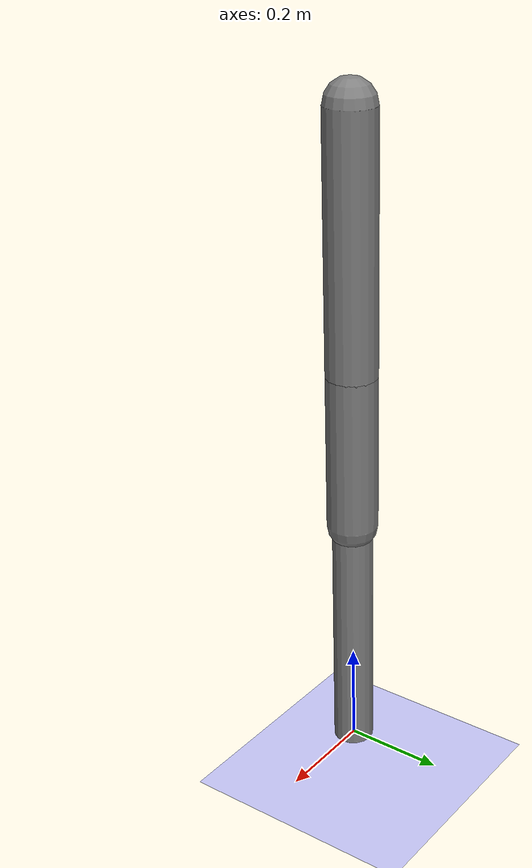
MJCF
<?xml version='1.0' encoding='UTF-8'?>
<mujoco model="robot_model">
  <worldbody>
    <light name="light" pos="0 -3 10" dir="0 0.5 -1" diffuse=".8 .8 .8" specular="0.1 0.1 0.1"/>
    <geom name="floor" type="plane" size="10.0 10.0 0.1" pos="0 0 0" rgba="0.8 0.8 1 1" contype="2" conaffinity="1"/>
    <body name="limb0" pos="0 0 0">
      <geom type="capsule" fromto="0 0 0 0 0 0.5970508653545454" size="0.04" density="859.9369589397895" contype="1" conaffinity="2"/>
      <site type="sphere" size="0.01" name="limb0_site0" pos="0 0 0.4410641018786898"/>
      <freejoint name="limb0_root"/>
      <body name="limb1" pos="0 0 0.4410641018786898">
        <geom type="capsule" fromto="0 0 0 0 0 0.15022447893611943" size="0.02942549387292471" density="623.2072277617059" contype="1" conaffinity="2"/>
        <site type="sphere" size="0.01" name="limb1_site0" pos="0 0 0.05751164040362171"/>
        <site type="sphere" size="0.01" name="limb1_site1" pos="0 0 0.058240055480809516"/>
        <body name="limb2" pos="0 0 0.05751164040362171">
          <geom type="capsule" fromto="0 0 0 0 0 0.3142270466105088" size="0.05027037047097052" density="884.6335299250863" contype="1" conaffinity="2"/>
          <site type="sphere" size="0.01" name="limb2_site0" pos="0 0 0.31407035800293537"/>
          <site type="sphere" size="0.01" name="limb2_site1" pos="0 0 0.1244647876466998"/>
          <site type="sphere" size="0.01" name="limb2_site2" pos="0 0 0.04165795227886009"/>
          <body name="limb3" pos="0 0 0.31407035800293537">
            <geom type="capsule" fromto="0 0 0 0 0 0.5" size="0.05036186858249093" density="994.4770382629451" contype="1" conaffinity="2"/>
            <joint name="joint_limb2_limb3_0" type="hinge" axis="0 1 0" range="-102.12620363364933 102.12620363364933" damping="5.0"/>
          </body>
          <body name="limb4" pos="0 0 0.1244647876466998">
            <geom type="capsule" fromto="0 0 0 0 0 0.36676537835349476" size="0.037605996818648096" density="900.064348310711" contype="1" conaffinity="2"/>
            <joint name="joint_limb2_limb4_0" type="hinge" axis="0 1 0" range="-118.99053825008444 118.99053825008444" damping="5.0"/>
          </body>
          <body name="limb5" pos="0 0 0.04165795227886009">
            <geom type="capsule" fromto="0 0 0 0 0 0.3159768240312215" size="0.04398226962321314" density="874.9200254675034" contype="1" conaffinity="2"/>
            <joint name="joint_limb2_limb5_0" type="hinge" axis="0 0 1" range="-118.11198317294439 118.11198317294439" damping="5.0"/>
          </body>
          <joint name="joint_limb1_limb2_0" type="hinge" axis="0 1 0" range="-81.36051586401729 81.36051586401729" damping="5.0"/>
        </body>
        <body name="limb6" pos="0 0 0.058240055480809516">
          <geom type="capsule" fromto="0 0 0 0 0 0.36608095288374265" size="0.04223936268537532" density="869.3767409676952" contype="1" conaffinity="2"/>
          <joint name="joint_limb1_limb6_0" type="hinge" axis="0 1 0" range="-116.40588747094725 116.40588747094725" damping="5.0"/>
        </body>
        <joint name="joint_limb0_limb1_0" type="hinge" axis="0 1 0" range="-74.0256878166487 74.0256878166487" damping="5.0"/>
      </body>
    </body>
  </worldbody>
  <actuator>
    <position name="position_actuator_joint_limb0_limb1_0" joint="joint_limb0_limb1_0" gear="1.1736128995551864" inheritrange="1" kp="10.0"/>
    <position name="position_actuator_joint_limb1_limb2_0" joint="joint_limb1_limb2_0" gear="2.0" inheritrange="1" kp="10.0"/>
    <position name="position_actuator_joint_limb2_limb3_0" joint="joint_limb2_limb3_0" gear="1.5858762083406583" inheritrange="1" kp="10.0"/>
    <position name="position_actuator_joint_limb2_limb4_0" joint="joint_limb2_limb4_0" gear="1.5131639501074796" inheritrange="1" kp="10.0"/>
    <position name="position_actuator_joint_limb2_limb5_0" joint="joint_limb2_limb5_0" gear="1.2993474610322076" inheritrange="1" kp="10.0"/>
    <position name="position_actuator_joint_limb1_limb6_0" joint="joint_limb1_limb6_0" gear="0.5841662555918476" inheritrange="1" kp="10.0"/>
  </actuator>
</mujoco>
